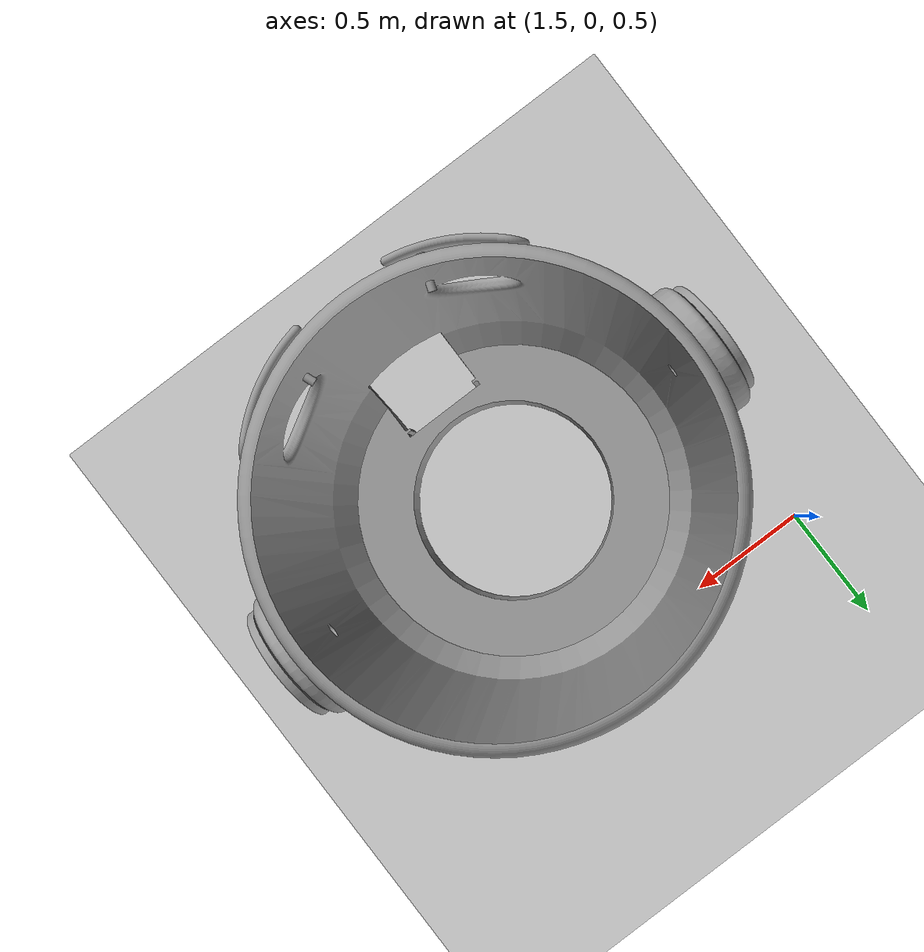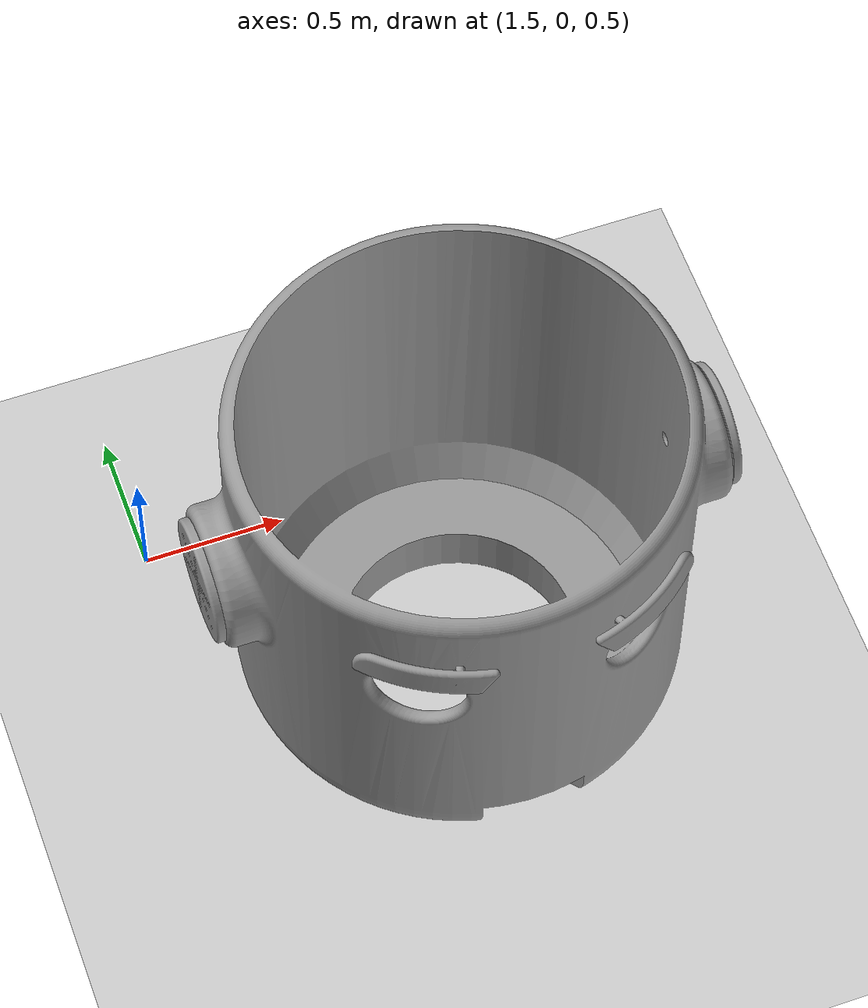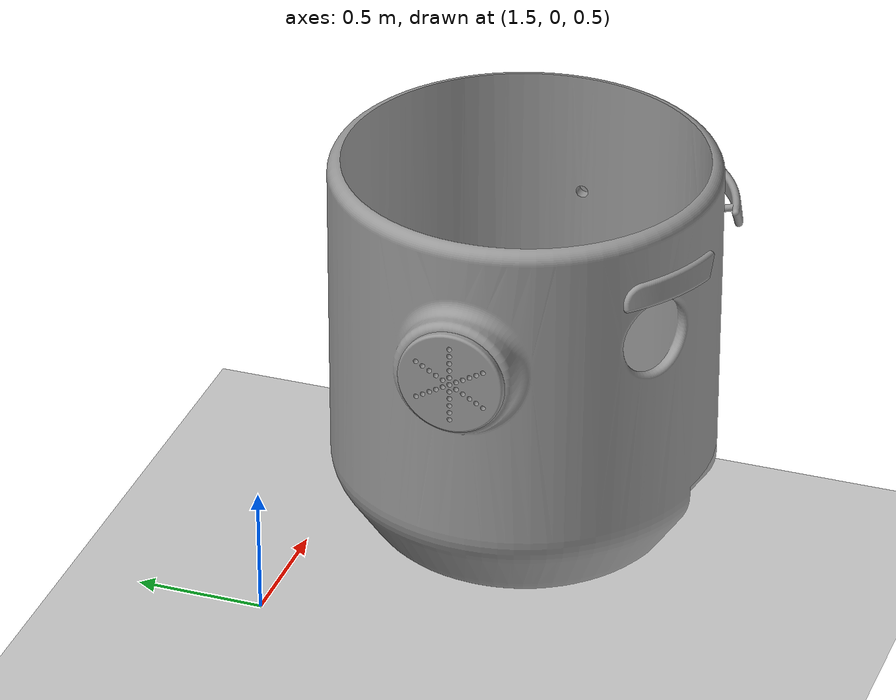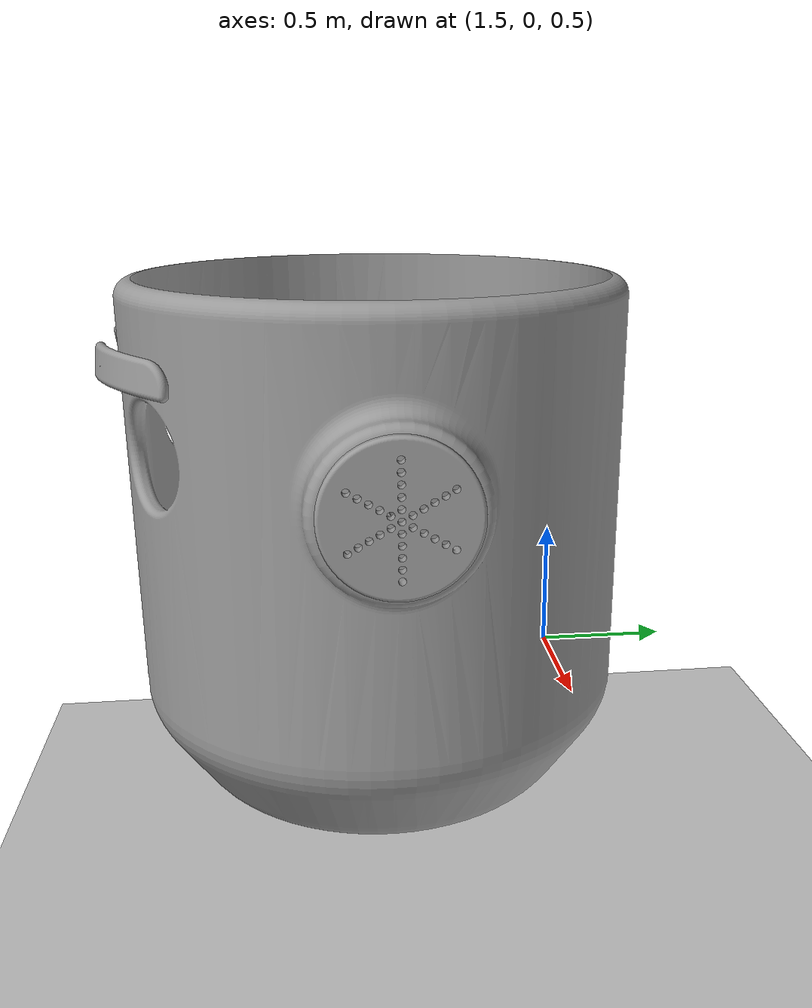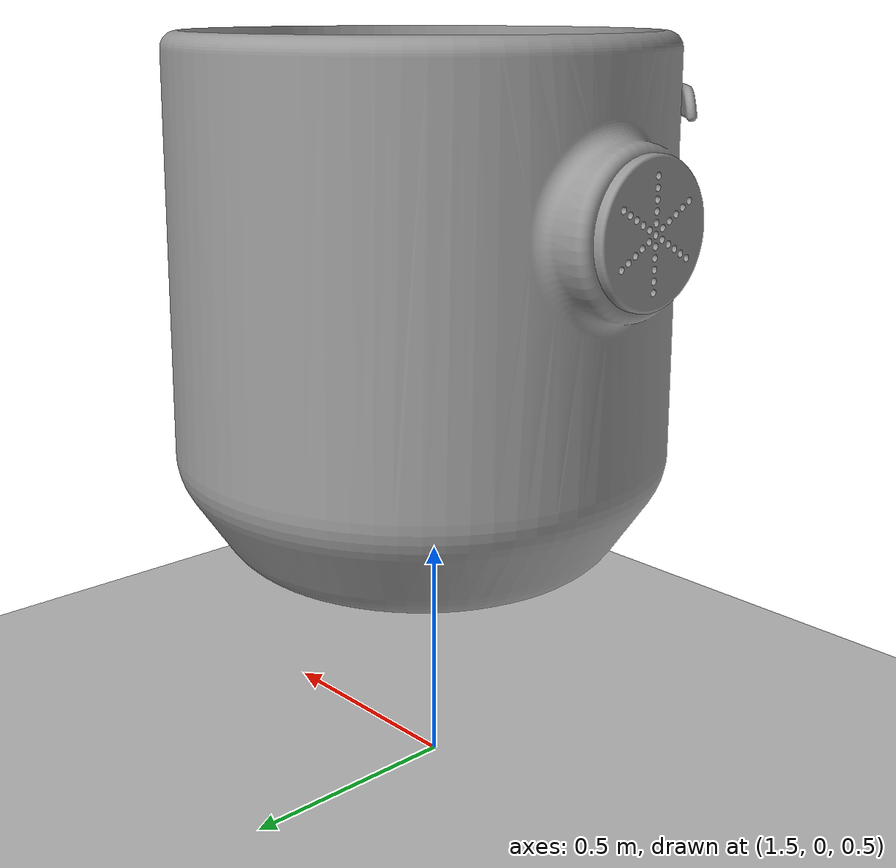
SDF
<sdf version="1.5">
 <world name="default">
  <light name="sun" type="directional">
   <pose>0 0 10 0 -0 0</pose>
   <diffuse>0.8 0.8 0.8 1</diffuse>
   <specular>0.2 0.2 0.2 1</specular>
   <attenuation>
    <range>1000</range>
    <constant>0.9</constant>
    <linear>0.01</linear>
    <quadratic>0.001</quadratic>
   </attenuation>
   <direction>-0.5 0.1 -0.9</direction>
  </light>
  <model name="ground_plane">
   <static>1</static>
   <link name="link">
    <collision name="collision">
     <geometry><plane><normal>0 0 1</normal><size>100 100</size></plane></geometry>
     <surface><friction><ode><mu>100</mu><mu2>50</mu2></ode></friction></surface>
    </collision>
    <visual name="visual">
     <cast_shadows>0</cast_shadows>
     <geometry><plane><normal>0 0 1</normal><size>100 100</size></plane></geometry>
     <material>
      <script><uri>file://media/materials/scripts/gazebo.material</uri><name>Gazebo/Grey</name></script>
     </material>
    </visual>
   </link>
  </model>
  <physics name="default_physics" default="0" type="ode">
   <max_step_size>0.001</max_step_size>
   <real_time_factor>1</real_time_factor>
   <real_time_update_rate>1000</real_time_update_rate>
   <gravity>0 0 -9.8</gravity>
   <magnetic_field>5.5645e-06 2.28758e-05 -4.23884e-05</magnetic_field>
  </physics>
  <scene><ambient>0.4 0.4 0.4 1</ambient><background>0.7 0.7 0.7 1</background><shadows>1</shadows></scene>
  <spherical_coordinates>
   <surface_model>EARTH_WGS84</surface_model>
   <latitude_deg>0</latitude_deg>
   <longitude_deg>0</longitude_deg>
   <elevation>0</elevation>
   <heading_deg>0</heading_deg>
  </spherical_coordinates>
  <model name="HEAD">
   <link name="FACE">
    <pose>1.5371 -1.50745 0.5 0 -0 0</pose>
    <inertial>
     <mass>0.47386924</mass>
     <inertia>
      <ixx>0.00458492</ixx>
      <iyy>0.00475384</iyy>
      <izz>0.00222689</izz>
      <ixy>0</ixy>
      <ixz>0</ixz>
      <iyz>0.00007495</iyz>
     </inertia>
    </inertial>
    <collision name="collision">
     <geometry>
      <box><size>0.17 0.15 0.16</size></box>
      <mesh>
       <uri>/media/trannguyenphuongtrinh_eeit13/01D0512D26AB19B0/ROBOT/retry2/face/Face.STL</uri>
       <scale>0.01 0.01 0.01</scale>
      </mesh>
     </geometry>
    </collision>
    <visual name="custom_-27_visual">
     <geometry>
      <mesh>
       <uri>/media/trannguyenphuongtrinh_eeit13/01D0512D26AB19B0/ROBOT/retry2/face/Face.STL</uri>
       <scale>0.01 0.01 0.01</scale>
      </mesh>
     </geometry>
     <material>
      <script><uri>file://media/materials/scripts/gazebo.material</uri><name>Gazebo/Grey</name></script>
     </material>
    </visual>
   </link>
   <link name="EARcap_right">
    <pose>1.510000 -0.967000 1.425000 1.56 0.000001 1.575000</pose>
    <inertial>
     <mass>0.00532927</mass>
     <inertia>
      <ixx>0.00000069</ixx>
      <iyy>0.00000069</iyy>
      <izz>0.00000127</izz>
      <ixy>0</ixy>
      <ixz>0</ixz>
      <iyz>0</iyz>
     </inertia>
    </inertial>
    <collision name="defaultModel_0::custom_0_collision">
     <geometry>
      <box><size>0.041 0.041 0.008</size></box>
      <mesh>
       <uri>/media/trannguyenphuongtrinh_eeit13/01D0512D26AB19B0/ROBOT/retry2/ear/ear_cap.STL</uri>
       <scale>0.01 0.01 0.01</scale>
      </mesh>
     </geometry>
    </collision>
    <visual name="custom_0_visual">
     <geometry>
      <mesh>
       <uri>/media/trannguyenphuongtrinh_eeit13/01D0512D26AB19B0/ROBOT/retry2/ear/ear_cap.STL</uri>
       <scale>0.01 0.01 0.01</scale>
      </mesh>
     </geometry>
     <material>
      <script><uri>file://media/materials/scripts/gazebo.material</uri><name>Gazebo/Grey</name></script>
     </material>
    </visual>
   </link>
   <link name="EARcap_left">
    <pose>3.277000 -0.555000 1.430000 1.585000 -0.000001 -1.575</pose>
    <inertial>
     <mass>0.00532927</mass>
     <inertia>
      <ixx>0.00000069</ixx>
      <iyy>0.00000069</iyy>
      <izz>0.00000127</izz>
      <ixy>0</ixy>
      <ixz>0</ixz>
      <iyz>0</iyz>
     </inertia>
    </inertial>
    <collision name="defaultModel_0::custom_0_collision">
     <geometry>
      <box><size>0.041 0.041 0.008</size></box>
      <mesh>
       <uri>/media/trannguyenphuongtrinh_eeit13/01D0512D26AB19B0/ROBOT/retry2/ear/ear_cap.STL</uri>
       <scale>0.01 0.01 0.01</scale>
      </mesh>
     </geometry>
    </collision>
    <visual name="custom_0_visual">
     <geometry>
      <mesh>
       <uri>/media/trannguyenphuongtrinh_eeit13/01D0512D26AB19B0/ROBOT/retry2/ear/ear_cap.STL</uri>
       <scale>0.01 0.01 0.01</scale>
      </mesh>
     </geometry>
     <material>
      <script><uri>file://media/materials/scripts/gazebo.material</uri><name>Gazebo/Grey</name></script>
     </material>
    </visual>
   </link>
   <joint name="face_ear_left" type="screw">
    <parent>FACE</parent>
    <child>EARcap_left</child>
    <thread_pitch>0.02</thread_pitch>
    <axis><use_parent_model_frame>true</use_parent_model_frame></axis>
   </joint>
   <joint name="face_ear_right" type="screw">
    <parent>FACE</parent>
    <child>EARcap_right</child>
    <thread_pitch>0.02</thread_pitch>
    <axis><use_parent_model_frame>true</use_parent_model_frame></axis>
   </joint>
   <link name="EYEBROW_right">
    <pose>2.245000 -1.027000 1.880000 2.999999 -0.000001 0.527000</pose>
    <inertial>
     <mass>0.00141734</mass>
     <inertia>
      <ixx>0.00000549</ixx>
      <iyy>0.00000025</iyy>
      <izz>0.00000564</izz>
      <ixy>-0.00000002</ixy>
      <ixz>0</ixz>
      <iyz>0.00000044</iyz>
     </inertia>
    </inertial>
    <collision name="defaultModel_0::custom_0_collision">
     <geometry>
      <box><size>0.045 0.016 0.010</size></box>
      <mesh>
       <uri>/media/trannguyenphuongtrinh_eeit13/01D0512D26AB19B0/ROBOT/retry2/eyebrown/long-may-phai.STL</uri>
       <scale>0.01 0.01 0.01</scale>
      </mesh>
     </geometry>
    </collision>
    <visual name="custom_0_visual">
     <geometry>
      <mesh>
       <uri>/media/trannguyenphuongtrinh_eeit13/01D0512D26AB19B0/ROBOT/retry2/eyebrown/long-may-phai.STL</uri>
       <scale>0.01 0.01 0.01</scale>
      </mesh>
     </geometry>
     <material>
      <script><uri>file://media/materials/scripts/gazebo.material</uri><name>Gazebo/Grey</name></script>
     </material>
    </visual>
   </link>
   <link name="EYEBROW_left">
    <pose>2.130000 -0.800000 1.880000 3.000001 0.000002 -0.519999</pose>
    <inertial>
     <mass>0.00141734</mass>
     <inertia>
      <ixx>0.00000549</ixx>
      <iyy>0.00000025</iyy>
      <izz>0.00000564</izz>
      <ixy>-0.00000002</ixy>
      <ixz>0</ixz>
      <iyz>0.00000044</iyz>
     </inertia>
    </inertial>
    <collision name="defaultModel_0::custom_0_collision">
     <geometry>
      <box><size>0.045 0.016 0.010</size></box>
      <mesh>
       <uri>/media/trannguyenphuongtrinh_eeit13/01D0512D26AB19B0/ROBOT/retry2/eyebrown/long-may-trai.STL</uri>
       <scale>0.01 0.01 0.01</scale>
      </mesh>
     </geometry>
    </collision>
    <visual name="custom_0_visual">
     <geometry>
      <mesh>
       <uri>/media/trannguyenphuongtrinh_eeit13/01D0512D26AB19B0/ROBOT/retry2/eyebrown/long-may-trai.STL</uri>
       <scale>0.01 0.01 0.01</scale>
      </mesh>
     </geometry>
     <material>
      <script><uri>file://media/materials/scripts/gazebo.material</uri><name>Gazebo/Grey</name></script>
     </material>
    </visual>
   </link>
   <joint name="face_brow_left" type="revolute">
    <parent>FACE</parent>
    <child>EYEBROW_left</child>
    <axis><xyz>0 -1 0</xyz><limit><lower>3.14</lower><upper>3.14</upper></limit></axis>
   </joint>
   <joint name="face_brow_right" type="revolute">
    <parent>FACE</parent>
    <child>EYEBROW_right</child>
    <axis><xyz>0 -1 0</xyz><limit><lower>3.14</lower><upper>3.14</upper></limit></axis>
   </joint>
   <static>1</static>
  </model>
 </world>
</sdf>
